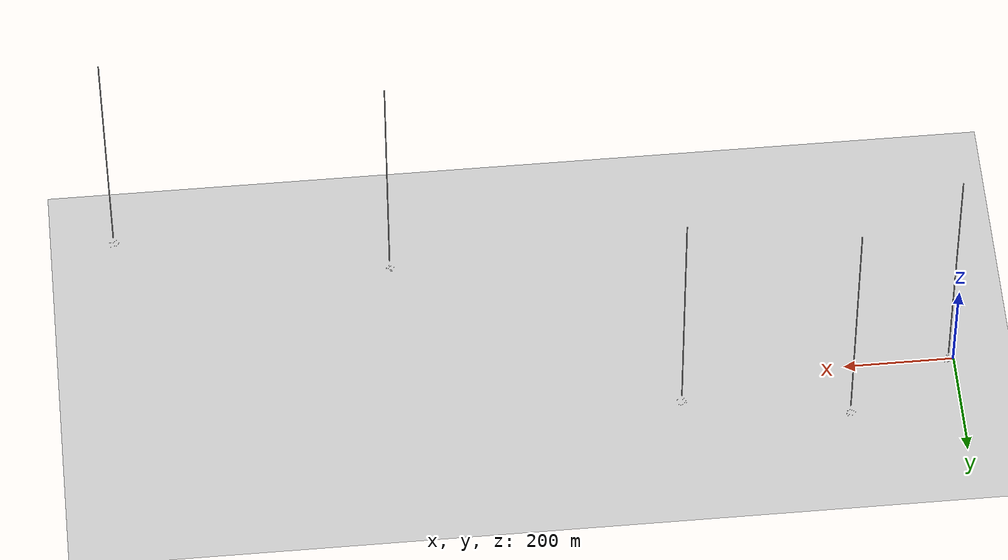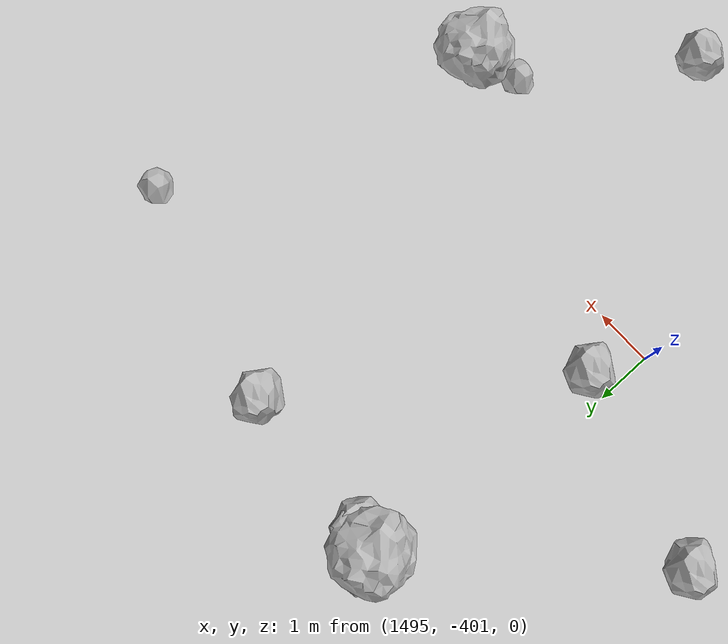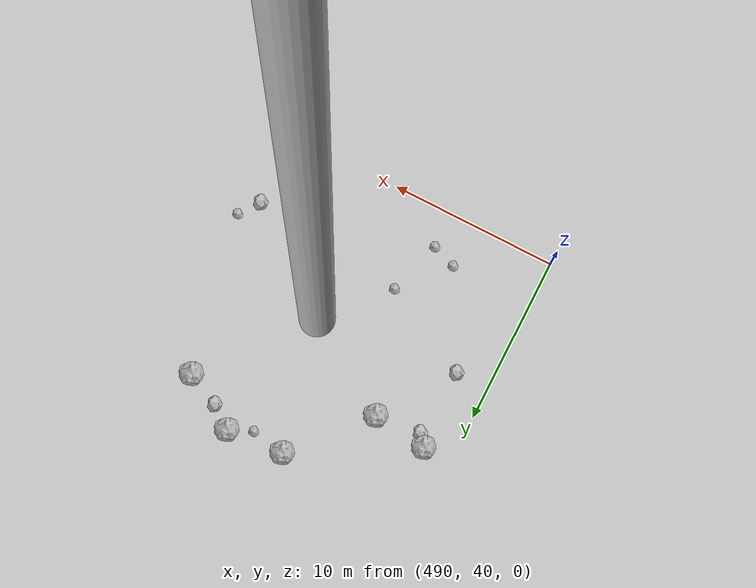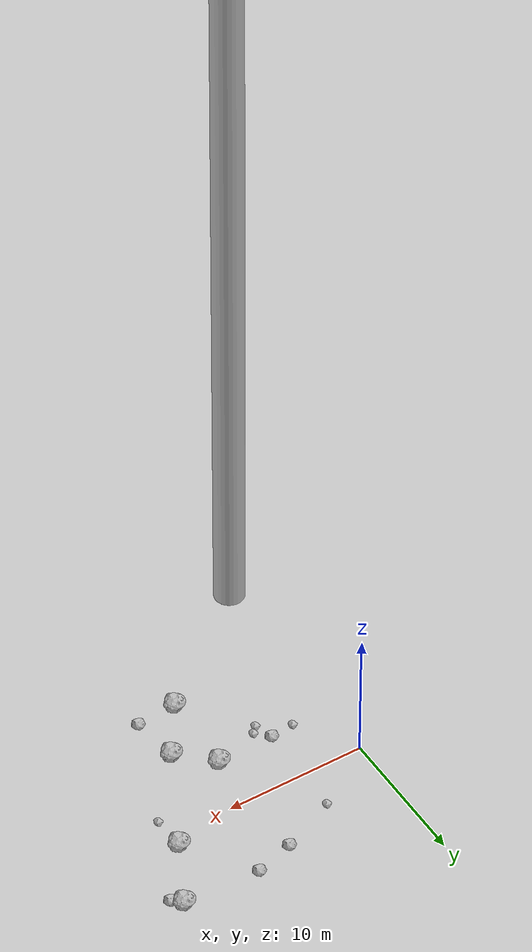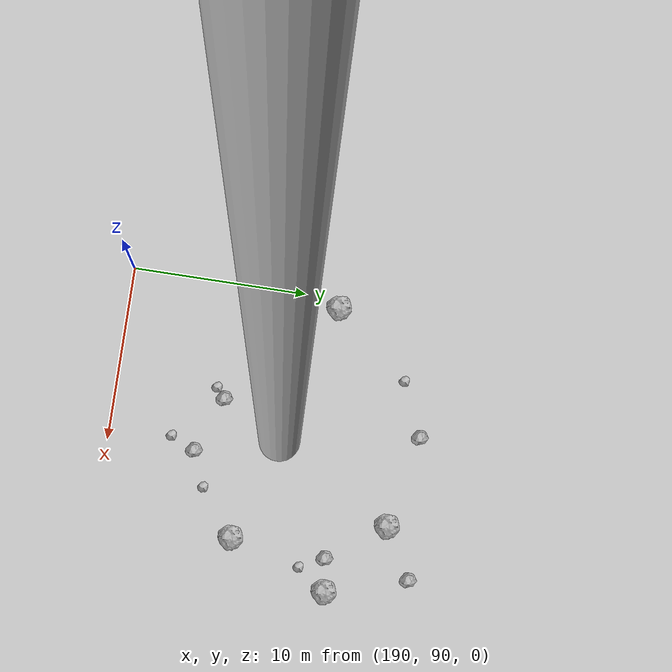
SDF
<?xml version="1.0" ?>
<sdf version="1.6">
  <world name="default">

    <include>
      <uri>model://custom_ground</uri>
    </include>

    <include>
      <uri>model://sun</uri>
    </include>

    <spherical_coordinates>
      <surface_model>EARTH_WGS84</surface_model>
      <latitude_deg>38.161479</latitude_deg>
      <longitude_deg>-122.454630</longitude_deg>
      <elevation>488.0</elevation>
      <heading_deg>90</heading_deg>
    </spherical_coordinates>

    <model name="rock1_0_0">
      <include>
        <uri>model://rock1</uri>
        <pose>8.59407237380655 -3.7019231933031733 0.5 0 0 0</pose>
      </include>
    </model>
    <model name="rock1_0_1">
      <include>
        <uri>model://rock1</uri>
        <pose>14.568407567707585 1.0190062802161588 0.5 0 0 0</pose>
      </include>
    </model>
    <model name="rock1_0_2">
      <include>
        <uri>model://rock1</uri>
        <pose>8.434067202285176 -9.528371364496987 0.5 0 0 0</pose>
      </include>
    </model>
    <model name="rock1_0_3">
      <include>
        <uri>model://rock1</uri>
        <pose>10.905069465143722 -5.894294894451457 0.5 0 0 0</pose>
      </include>
    </model>
    <model name="rock1_0_4">
      <include>
        <uri>model://rock1</uri>
        <pose>16.862599628813854 5.40393601889734 0.5 0 0 0</pose>
      </include>
    </model>
    <model name="rock2_0_0">
      <include>
        <uri>model://rock2</uri>
        <pose>8.530082825493865 4.8267057581365655 0.3 0 0 0</pose>
      </include>
    </model>
    <model name="rock2_0_1">
      <include>
        <uri>model://rock2</uri>
        <pose>11.298509298850728 -9.337906087229275 0.3 0 0 0</pose>
      </include>
    </model>
    <model name="rock2_0_2">
      <include>
        <uri>model://rock2</uri>
        <pose>11.327344164750144 5.649923864100231 0.3 0 0 0</pose>
      </include>
    </model>
    <model name="rock2_0_3">
      <include>
        <uri>model://rock2</uri>
        <pose>17.451070141094554 4.779218908175871 0.3 0 0 0</pose>
      </include>
    </model>
    <model name="rock2_0_4">
      <include>
        <uri>model://rock2</uri>
        <pose>4.428409761382874 -3.7838409201340006 0.3 0 0 0</pose>
      </include>
    </model>
    <model name="rock3_0_0">
      <include>
        <uri>model://rock3</uri>
        <pose>5.2497439101778305 -4.7361007745930195 0.2 0 0 0</pose>
      </include>
    </model>
    <model name="rock3_0_1">
      <include>
        <uri>model://rock3</uri>
        <pose>2.6407730536298724 -4.035193716376623 0.2 0 0 0</pose>
      </include>
    </model>
    <model name="rock3_0_2">
      <include>
        <uri>model://rock3</uri>
        <pose>4.509458069800949 3.0334971842135268 0.2 0 0 0</pose>
      </include>
    </model>
    <model name="rock3_0_3">
      <include>
        <uri>model://rock3</uri>
        <pose>14.578061204527426 -1.4361136714449891 0.2 0 0 0</pose>
      </include>
    </model>
    <model name="rock3_0_4">
      <include>
        <uri>model://rock3</uri>
        <pose>4.787894060880234 -5.228809761405855 0.2 0 0 0</pose>
      </include>
    </model>
    <model name="rock1_1_0">
      <include>
        <uri>model://rock1</uri>
        <pose>206.78714622094742 103.58119589035182 0.5 0 0 0</pose>
      </include>
    </model>
    <model name="rock1_1_1">
      <include>
        <uri>model://rock1</uri>
        <pose>194.02366696652626 98.68990102648709 0.5 0 0 0</pose>
      </include>
    </model>
    <model name="rock1_1_2">
      <include>
        <uri>model://rock1</uri>
        <pose>190.5891986801886 102.00177366055698 0.5 0 0 0</pose>
      </include>
    </model>
    <model name="rock1_1_3">
      <include>
        <uri>model://rock1</uri>
        <pose>204.5496679405198 97.87205050016655 0.5 0 0 0</pose>
      </include>
    </model>
    <model name="rock1_1_4">
      <include>
        <uri>model://rock1</uri>
        <pose>202.56635432048165 106.58070426085638 0.5 0 0 0</pose>
      </include>
    </model>
    <model name="rock2_1_0">
      <include>
        <uri>model://rock2</uri>
        <pose>197.22251862756406 107.7093267540122 0.3 0 0 0</pose>
      </include>
    </model>
    <model name="rock2_1_1">
      <include>
        <uri>model://rock2</uri>
        <pose>205.3781345516437 108.24176590258944 0.3 0 0 0</pose>
      </include>
    </model>
    <model name="rock2_1_2">
      <include>
        <uri>model://rock2</uri>
        <pose>196.70397496116237 96.29429802966219 0.3 0 0 0</pose>
      </include>
    </model>
    <model name="rock2_1_3">
      <include>
        <uri>model://rock2</uri>
        <pose>204.8668878614588 103.35640817569566 0.3 0 0 0</pose>
      </include>
    </model>
    <model name="rock2_1_4">
      <include>
        <uri>model://rock2</uri>
        <pose>199.89423870767862 95.03777687948042 0.3 0 0 0</pose>
      </include>
    </model>
    <model name="rock3_1_0">
      <include>
        <uri>model://rock3</uri>
        <pose>205.57612797163716 101.93665898424477 0.2 0 0 0</pose>
      </include>
    </model>
    <model name="rock3_1_1">
      <include>
        <uri>model://rock3</uri>
        <pose>194.12958729459768 106.33932584702656 0.2 0 0 0</pose>
      </include>
    </model>
    <model name="rock3_1_2">
      <include>
        <uri>model://rock3</uri>
        <pose>196.10021532532087 95.76083501116672 0.2 0 0 0</pose>
      </include>
    </model>
    <model name="rock3_1_3">
      <include>
        <uri>model://rock3</uri>
        <pose>199.24153375067408 93.59956757414089 0.2 0 0 0</pose>
      </include>
    </model>
    <model name="rock3_1_4">
      <include>
        <uri>model://rock3</uri>
        <pose>201.89390881101542 95.84635677055584 0.2 0 0 0</pose>
      </include>
    </model>
    <model name="rock1_2_0">
      <include>
        <uri>model://rock1</uri>
        <pose>491.79642829570764 52.84462593731618 0.5 0 0 0</pose>
      </include>
    </model>
    <model name="rock1_2_1">
      <include>
        <uri>model://rock1</uri>
        <pose>502.4471643504106 57.08437951030987 0.5 0 0 0</pose>
      </include>
    </model>
    <model name="rock1_2_2">
      <include>
        <uri>model://rock1</uri>
        <pose>498.97300390701776 56.8294710972412 0.5 0 0 0</pose>
      </include>
    </model>
    <model name="rock1_2_3">
      <include>
        <uri>model://rock1</uri>
        <pose>495.10895451800667 52.44781653813389 0.5 0 0 0</pose>
      </include>
    </model>
    <model name="rock1_2_4">
      <include>
        <uri>model://rock1</uri>
        <pose>505.74189881280995 55.119618116449814 0.5 0 0 0</pose>
      </include>
    </model>
    <model name="rock2_2_0">
      <include>
        <uri>model://rock2</uri>
        <pose>492.33727862862145 52.19161178644792 0.3 0 0 0</pose>
      </include>
    </model>
    <model name="rock2_2_1">
      <include>
        <uri>model://rock2</uri>
        <pose>506.67022086795834 44.41969833312724 0.3 0 0 0</pose>
      </include>
    </model>
    <model name="rock2_2_2">
      <include>
        <uri>model://rock2</uri>
        <pose>492.0273218022282 48.12832672650355 0.3 0 0 0</pose>
      </include>
    </model>
    <model name="rock2_2_3">
      <include>
        <uri>model://rock2</uri>
        <pose>504.70057969322363 41.645650312074565 0.3 0 0 0</pose>
      </include>
    </model>
    <model name="rock2_2_4">
      <include>
        <uri>model://rock2</uri>
        <pose>503.7270411815935 56.09758889980395 0.3 0 0 0</pose>
      </include>
    </model>
    <model name="rock3_2_0">
      <include>
        <uri>model://rock3</uri>
        <pose>494.9861912824506 42.63312491868716 0.2 0 0 0</pose>
      </include>
    </model>
    <model name="rock3_2_1">
      <include>
        <uri>model://rock3</uri>
        <pose>500.95956721001903 56.45228656400183 0.2 0 0 0</pose>
      </include>
    </model>
    <model name="rock3_2_2">
      <include>
        <uri>model://rock3</uri>
        <pose>507.53095686196684 45.57891538810517 0.2 0 0 0</pose>
      </include>
    </model>
    <model name="rock3_2_3">
      <include>
        <uri>model://rock3</uri>
        <pose>497.4214511859845 45.36142767900358 0.2 0 0 0</pose>
      </include>
    </model>
    <model name="rock3_2_4">
      <include>
        <uri>model://rock3</uri>
        <pose>496.4332327699839 42.11317811417422 0.2 0 0 0</pose>
      </include>
    </model>
    <model name="rock1_3_0">
      <include>
        <uri>model://rock1</uri>
        <pose>1005.9281000971677 -298.4235467355619 0.5 0 0 0</pose>
      </include>
    </model>
    <model name="rock1_3_1">
      <include>
        <uri>model://rock1</uri>
        <pose>1000.8889681856466 -304.0910246036516 0.5 0 0 0</pose>
      </include>
    </model>
    <model name="rock1_3_2">
      <include>
        <uri>model://rock1</uri>
        <pose>997.5990429224202 -293.7705230047719 0.5 0 0 0</pose>
      </include>
    </model>
    <model name="rock1_3_3">
      <include>
        <uri>model://rock1</uri>
        <pose>1000.2513314935572 -302.01233097218756 0.5 0 0 0</pose>
      </include>
    </model>
    <model name="rock1_3_4">
      <include>
        <uri>model://rock1</uri>
        <pose>1002.3907111996995 -297.69904460784034 0.5 0 0 0</pose>
      </include>
    </model>
    <model name="rock2_3_0">
      <include>
        <uri>model://rock2</uri>
        <pose>992.7624682867801 -297.75960871531373 0.3 0 0 0</pose>
      </include>
    </model>
    <model name="rock2_3_1">
      <include>
        <uri>model://rock2</uri>
        <pose>1003.2519647246784 -308.3365589214432 0.3 0 0 0</pose>
      </include>
    </model>
    <model name="rock2_3_2">
      <include>
        <uri>model://rock2</uri>
        <pose>999.4358218495718 -294.6714105115473 0.3 0 0 0</pose>
      </include>
    </model>
    <model name="rock2_3_3">
      <include>
        <uri>model://rock2</uri>
        <pose>992.2716722586888 -298.98932597641385 0.3 0 0 0</pose>
      </include>
    </model>
    <model name="rock2_3_4">
      <include>
        <uri>model://rock2</uri>
        <pose>998.1490571575222 -302.99331509814897 0.3 0 0 0</pose>
      </include>
    </model>
    <model name="rock3_3_0">
      <include>
        <uri>model://rock3</uri>
        <pose>991.5447279373911 -295.8102539513969 0.2 0 0 0</pose>
      </include>
    </model>
    <model name="rock3_3_1">
      <include>
        <uri>model://rock3</uri>
        <pose>1003.4102250614003 -292.5201301160025 0.2 0 0 0</pose>
      </include>
    </model>
    <model name="rock3_3_2">
      <include>
        <uri>model://rock3</uri>
        <pose>996.3093422272605 -291.64856438876984 0.2 0 0 0</pose>
      </include>
    </model>
    <model name="rock3_3_3">
      <include>
        <uri>model://rock3</uri>
        <pose>998.5390257997523 -291.51806525168064 0.2 0 0 0</pose>
      </include>
    </model>
    <model name="rock3_3_4">
      <include>
        <uri>model://rock3</uri>
        <pose>1003.2679428306443 -297.22982819890234 0.2 0 0 0</pose>
      </include>
    </model>
    <model name="rock1_4_0">
      <include>
        <uri>model://rock1</uri>
        <pose>1490.1801960284902 -401.1016958175746 0.5 0 0 0</pose>
      </include>
    </model>
    <model name="rock1_4_1">
      <include>
        <uri>model://rock1</uri>
        <pose>1500.915503427867 -402.5981850193366 0.5 0 0 0</pose>
      </include>
    </model>
    <model name="rock1_4_2">
      <include>
        <uri>model://rock1</uri>
        <pose>1494.5080299741053 -407.9013856918732 0.5 0 0 0</pose>
      </include>
    </model>
    <model name="rock1_4_3">
      <include>
        <uri>model://rock1</uri>
        <pose>1507.6527189068524 -402.7443111494547 0.5 0 0 0</pose>
      </include>
    </model>
    <model name="rock1_4_4">
      <include>
        <uri>model://rock1</uri>
        <pose>1495.7537843758382 -395.48176299173946 0.5 0 0 0</pose>
      </include>
    </model>
    <model name="rock2_4_0">
      <include>
        <uri>model://rock2</uri>
        <pose>1498.7899941183828 -395.73473766978685 0.3 0 0 0</pose>
      </include>
    </model>
    <model name="rock2_4_1">
      <include>
        <uri>model://rock2</uri>
        <pose>1495.4878175262056 -400.0982493893318 0.3 0 0 0</pose>
      </include>
    </model>
    <model name="rock2_4_2">
      <include>
        <uri>model://rock2</uri>
        <pose>1496.1592692356328 -395.5630624003503 0.3 0 0 0</pose>
      </include>
    </model>
    <model name="rock2_4_3">
      <include>
        <uri>model://rock2</uri>
        <pose>1492.1970530175715 -399.0419670240716 0.3 0 0 0</pose>
      </include>
    </model>
    <model name="rock2_4_4">
      <include>
        <uri>model://rock2</uri>
        <pose>1498.1984471510261 -405.57479399401274 0.3 0 0 0</pose>
      </include>
    </model>
    <model name="rock3_4_0">
      <include>
        <uri>model://rock3</uri>
        <pose>1505.3293086955807 -403.0632672168548 0.2 0 0 0</pose>
      </include>
    </model>
    <model name="rock3_4_1">
      <include>
        <uri>model://rock3</uri>
        <pose>1502.7318347155156 -396.8358317503164 0.2 0 0 0</pose>
      </include>
    </model>
    <model name="rock3_4_2">
      <include>
        <uri>model://rock3</uri>
        <pose>1500.0549828823318 -402.9363020624451 0.2 0 0 0</pose>
      </include>
    </model>
    <model name="rock3_4_3">
      <include>
        <uri>model://rock3</uri>
        <pose>1495.5700356508014 -395.10452895554505 0.2 0 0 0</pose>
      </include>
    </model>
    <model name="rock3_4_4">
      <include>
        <uri>model://rock3</uri>
        <pose>1505.9244357600317 -393.0736505610478 0.2 0 0 0</pose>
      </include>
    </model>

    <model name="cylinder_1">
      <static>true</static>
      <link name="link">
        <visual name="visual">
          <geometry>
            <cylinder>
              <radius>1</radius>
              <length>500</length>
            </cylinder>
          </geometry>
        </visual>
      </link>
      <pose>10 0 270 0 0 0</pose>
    </model>

    <model name="cylinder_2">
      <static>true</static>
      <link name="link">
        <visual name="visual">
          <geometry>
            <cylinder>
              <radius>1</radius>
              <length>500</length>
            </cylinder>
          </geometry>
        </visual>
      </link>
      <pose>200 100 270 0 0 0</pose>
    </model>

    <model name="cylinder_3">
      <static>true</static>
      <link name="link">
        <visual name="visual">
          <geometry>
            <cylinder>
              <radius>1</radius>
              <length>500</length>
            </cylinder>
          </geometry>
        </visual>
      </link>
      <pose>500 50 270 0 0 0</pose>
    </model>

    <model name="cylinder_4">
      <static>true</static>
      <link name="link">
        <visual name="visual">
          <geometry>
            <cylinder>
              <radius>1</radius>
              <length>500</length>
            </cylinder>
          </geometry>
        </visual>
      </link>
      <pose>1000 -300 270 0 0 0</pose>
    </model>

    <model name="cylinder_5">
      <static>true</static>
      <link name="link">
        <visual name="visual">
          <geometry>
            <cylinder>
              <radius>1</radius>
              <length>500</length>
            </cylinder>
          </geometry>
        </visual>
      </link>
      <pose>1500 -400 270 0 0 0</pose>
    </model>

  </world>
</sdf>

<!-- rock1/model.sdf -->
<sdf version="1.6">
  <model name="rock1">
    <static>true</static> <!-- Set to true if the model should not move -->
    <pose>0 0 0 0 0 0</pose>

    <!--z offset is 0.5 for full scale-->

    <link name="link">
      <collision name="rock1_collision">
        <geometry>
          <mesh>
            <uri>model://meshes/rock1.dae</uri>
          </mesh>
        </geometry>
      </collision>
      <visual name="rock1_visual">
        <geometry>
          <mesh>
            <uri>model://meshes/rock1.dae</uri>
          </mesh>
        </geometry>
        <material>
          <script>
            <uri>model://materials/scripts/sand_pebbles.material</uri>
            <name>custom_ground/Image</name>
          </script>
        </material>
      </visual>
    </link>
  </model>
</sdf>

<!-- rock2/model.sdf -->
<sdf version="1.6">
  <model name="rock2">
    <static>true</static> <!-- Set to true if the model should not move -->
    <pose>0 0 0 0 0 0</pose>

    <!--z offset is 0.3 for full scale-->

    <link name="link">
      <collision name="rock2_collision">
        <geometry>
          <mesh>
            <uri>model://meshes/rock2.dae</uri>
          </mesh>
        </geometry>
      </collision>
      <visual name="rock2_visual">
        <geometry>
          <mesh>
            <uri>model://meshes/rock2.dae</uri>
          </mesh>
        </geometry>
        <material>
          <script>
            <uri>model://materials/scripts/sand_pebbles.material</uri>
            <name>custom_ground/Image</name>
          </script>
        </material>
      </visual>
    </link>
  </model>
</sdf>

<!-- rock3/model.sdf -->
<sdf version="1.6">
  <model name="rock3">
    <static>true</static> <!-- Set to true if the model should not move -->
    <pose>0 0 0 0 0 0</pose>

    <!--z offset is 0.2 for full scale-->

    <link name="link">
      <collision name="rock3_collision">
        <geometry>
          <mesh>
            <uri>model://meshes/rock3.dae</uri>
          </mesh>
        </geometry>
      </collision>
      <visual name="rock3_visual">
        <geometry>
          <mesh>
            <uri>model://meshes/rock3.dae</uri>
          </mesh>
        </geometry>
        <material>
          <script>
            <uri>model://materials/scripts/sand_pebbles.material</uri>
            <name>custom_ground/Image</name>
          </script>
        </material>
      </visual>
    </link>
  </model>
</sdf>

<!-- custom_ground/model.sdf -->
<sdf version="1.6">
  <model name="custom_ground">
    <static>true</static> <!-- Ground is static and immovable -->
    <link name="ground_link">
      <pose>240 0 0 0 0 0</pose> <!-- Position and orientation relative to the world -->
      <!-- Visual Representation -->
      <visual name="ground_visual">
        <geometry>
          <plane>
            <normal>0 0 1</normal> <!-- Upward facing plane -->
            <size>500 500</size> <!-- Size of the plane -->
          </plane>
        </geometry>
        <material>
          <script>
            <uri>model://materials/scripts/sand_pebbles.material</uri>
            <name>custom_ground/Image</name>
          </script>
        </material>
      </visual>

      <!-- Collision Representation -->
      <collision name="ground_collision">
        <geometry>
          <plane>
            <normal>0 0 1</normal>
            <size>100 100</size>
          </plane>
        </geometry>
      </collision>

    </link>
  </model>
</sdf>
